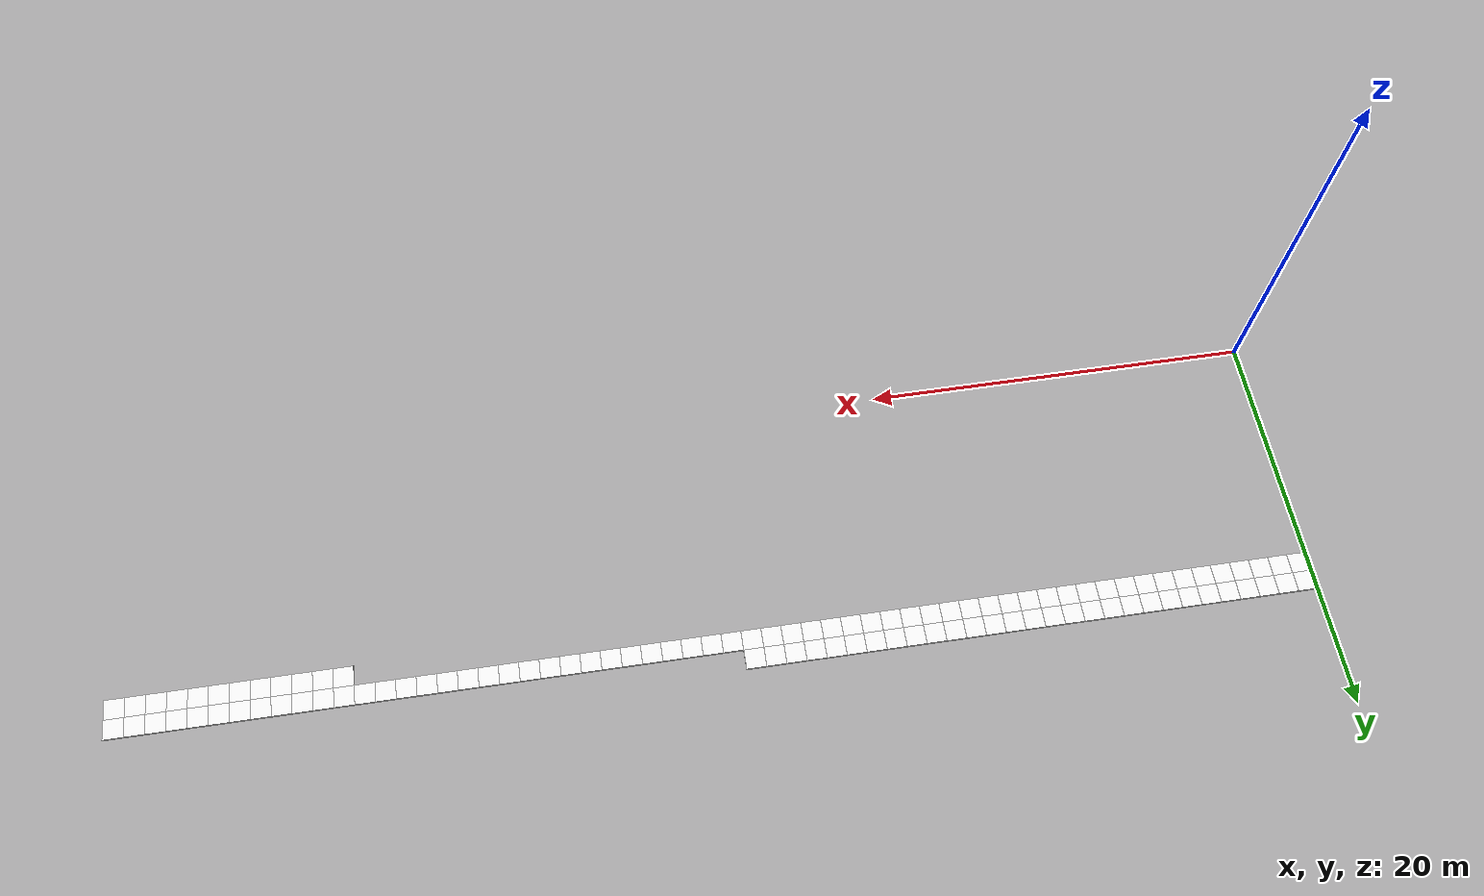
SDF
<sdf version="1.6">
 <world name="grid_world">
  <model name="cell_48_11">
   <static>true</static>
   <link name="link">
    <collision name="collision"><geometry><box><size>1 1 0.1</size></box></geometry></collision>
    <visual name="visual">
     <geometry><box><size>1 1 0.1</size></box></geometry>
     <material>
      <script><uri>file://media/materials/scripts/gazebo.material</uri><name>Gazebo/White</name></script>
     </material>
    </visual>
    <pose>48.5 11.5 0.05 0 0 0</pose>
   </link>
  </model>
  <model name="cell_49_11">
   <static>true</static>
   <link name="link">
    <collision name="collision"><geometry><box><size>1 1 0.1</size></box></geometry></collision>
    <visual name="visual">
     <geometry><box><size>1 1 0.1</size></box></geometry>
     <material>
      <script><uri>file://media/materials/scripts/gazebo.material</uri><name>Gazebo/White</name></script>
     </material>
    </visual>
    <pose>49.5 11.5 0.05 0 0 0</pose>
   </link>
  </model>
  <model name="cell_50_11">
   <static>true</static>
   <link name="link">
    <collision name="collision"><geometry><box><size>1 1 0.1</size></box></geometry></collision>
    <visual name="visual">
     <geometry><box><size>1 1 0.1</size></box></geometry>
     <material>
      <script><uri>file://media/materials/scripts/gazebo.material</uri><name>Gazebo/White</name></script>
     </material>
    </visual>
    <pose>50.5 11.5 0.05 0 0 0</pose>
   </link>
  </model>
  <model name="cell_51_11">
   <static>true</static>
   <link name="link">
    <collision name="collision"><geometry><box><size>1 1 0.1</size></box></geometry></collision>
    <visual name="visual">
     <geometry><box><size>1 1 0.1</size></box></geometry>
     <material>
      <script><uri>file://media/materials/scripts/gazebo.material</uri><name>Gazebo/White</name></script>
     </material>
    </visual>
    <pose>51.5 11.5 0.05 0 0 0</pose>
   </link>
  </model>
  <model name="cell_52_11">
   <static>true</static>
   <link name="link">
    <collision name="collision"><geometry><box><size>1 1 0.1</size></box></geometry></collision>
    <visual name="visual">
     <geometry><box><size>1 1 0.1</size></box></geometry>
     <material>
      <script><uri>file://media/materials/scripts/gazebo.material</uri><name>Gazebo/White</name></script>
     </material>
    </visual>
    <pose>52.5 11.5 0.05 0 0 0</pose>
   </link>
  </model>
  <model name="cell_53_11">
   <static>true</static>
   <link name="link">
    <collision name="collision"><geometry><box><size>1 1 0.1</size></box></geometry></collision>
    <visual name="visual">
     <geometry><box><size>1 1 0.1</size></box></geometry>
     <material>
      <script><uri>file://media/materials/scripts/gazebo.material</uri><name>Gazebo/White</name></script>
     </material>
    </visual>
    <pose>53.5 11.5 0.05 0 0 0</pose>
   </link>
  </model>
  <model name="cell_54_11">
   <static>true</static>
   <link name="link">
    <collision name="collision"><geometry><box><size>1 1 0.1</size></box></geometry></collision>
    <visual name="visual">
     <geometry><box><size>1 1 0.1</size></box></geometry>
     <material>
      <script><uri>file://media/materials/scripts/gazebo.material</uri><name>Gazebo/White</name></script>
     </material>
    </visual>
    <pose>54.5 11.5 0.05 0 0 0</pose>
   </link>
  </model>
  <model name="cell_55_11">
   <static>true</static>
   <link name="link">
    <collision name="collision"><geometry><box><size>1 1 0.1</size></box></geometry></collision>
    <visual name="visual">
     <geometry><box><size>1 1 0.1</size></box></geometry>
     <material>
      <script><uri>file://media/materials/scripts/gazebo.material</uri><name>Gazebo/White</name></script>
     </material>
    </visual>
    <pose>55.5 11.5 0.05 0 0 0</pose>
   </link>
  </model>
  <model name="cell_56_11">
   <static>true</static>
   <link name="link">
    <collision name="collision"><geometry><box><size>1 1 0.1</size></box></geometry></collision>
    <visual name="visual">
     <geometry><box><size>1 1 0.1</size></box></geometry>
     <material>
      <script><uri>file://media/materials/scripts/gazebo.material</uri><name>Gazebo/White</name></script>
     </material>
    </visual>
    <pose>56.5 11.5 0.05 0 0 0</pose>
   </link>
  </model>
  <model name="cell_57_11">
   <static>true</static>
   <link name="link">
    <collision name="collision"><geometry><box><size>1 1 0.1</size></box></geometry></collision>
    <visual name="visual">
     <geometry><box><size>1 1 0.1</size></box></geometry>
     <material>
      <script><uri>file://media/materials/scripts/gazebo.material</uri><name>Gazebo/White</name></script>
     </material>
    </visual>
    <pose>57.5 11.5 0.05 0 0 0</pose>
   </link>
  </model>
  <model name="cell_58_11">
   <static>true</static>
   <link name="link">
    <collision name="collision"><geometry><box><size>1 1 0.1</size></box></geometry></collision>
    <visual name="visual">
     <geometry><box><size>1 1 0.1</size></box></geometry>
     <material>
      <script><uri>file://media/materials/scripts/gazebo.material</uri><name>Gazebo/White</name></script>
     </material>
    </visual>
    <pose>58.5 11.5 0.05 0 0 0</pose>
   </link>
  </model>
  <model name="cell_59_11">
   <static>true</static>
   <link name="link">
    <collision name="collision"><geometry><box><size>1 1 0.1</size></box></geometry></collision>
    <visual name="visual">
     <geometry><box><size>1 1 0.1</size></box></geometry>
     <material>
      <script><uri>file://media/materials/scripts/gazebo.material</uri><name>Gazebo/White</name></script>
     </material>
    </visual>
    <pose>59.5 11.5 0.05 0 0 0</pose>
   </link>
  </model>
  <model name="cell_0_12">
   <static>true</static>
   <link name="link">
    <collision name="collision"><geometry><box><size>1 1 0.1</size></box></geometry></collision>
    <visual name="visual">
     <geometry><box><size>1 1 0.1</size></box></geometry>
     <material>
      <script><uri>file://media/materials/scripts/gazebo.material</uri><name>Gazebo/White</name></script>
     </material>
    </visual>
    <pose>0.5 12.5 0.05 0 0 0</pose>
   </link>
  </model>
  <model name="cell_1_12">
   <static>true</static>
   <link name="link">
    <collision name="collision"><geometry><box><size>1 1 0.1</size></box></geometry></collision>
    <visual name="visual">
     <geometry><box><size>1 1 0.1</size></box></geometry>
     <material>
      <script><uri>file://media/materials/scripts/gazebo.material</uri><name>Gazebo/White</name></script>
     </material>
    </visual>
    <pose>1.5 12.5 0.05 0 0 0</pose>
   </link>
  </model>
  <model name="cell_2_12">
   <static>true</static>
   <link name="link">
    <collision name="collision"><geometry><box><size>1 1 0.1</size></box></geometry></collision>
    <visual name="visual">
     <geometry><box><size>1 1 0.1</size></box></geometry>
     <material>
      <script><uri>file://media/materials/scripts/gazebo.material</uri><name>Gazebo/White</name></script>
     </material>
    </visual>
    <pose>2.5 12.5 0.05 0 0 0</pose>
   </link>
  </model>
  <model name="cell_3_12">
   <static>true</static>
   <link name="link">
    <collision name="collision"><geometry><box><size>1 1 0.1</size></box></geometry></collision>
    <visual name="visual">
     <geometry><box><size>1 1 0.1</size></box></geometry>
     <material>
      <script><uri>file://media/materials/scripts/gazebo.material</uri><name>Gazebo/White</name></script>
     </material>
    </visual>
    <pose>3.5 12.5 0.05 0 0 0</pose>
   </link>
  </model>
  <model name="cell_4_12">
   <static>true</static>
   <link name="link">
    <collision name="collision"><geometry><box><size>1 1 0.1</size></box></geometry></collision>
    <visual name="visual">
     <geometry><box><size>1 1 0.1</size></box></geometry>
     <material>
      <script><uri>file://media/materials/scripts/gazebo.material</uri><name>Gazebo/White</name></script>
     </material>
    </visual>
    <pose>4.5 12.5 0.05 0 0 0</pose>
   </link>
  </model>
  <model name="cell_5_12">
   <static>true</static>
   <link name="link">
    <collision name="collision"><geometry><box><size>1 1 0.1</size></box></geometry></collision>
    <visual name="visual">
     <geometry><box><size>1 1 0.1</size></box></geometry>
     <material>
      <script><uri>file://media/materials/scripts/gazebo.material</uri><name>Gazebo/White</name></script>
     </material>
    </visual>
    <pose>5.5 12.5 0.05 0 0 0</pose>
   </link>
  </model>
  <model name="cell_6_12">
   <static>true</static>
   <link name="link">
    <collision name="collision"><geometry><box><size>1 1 0.1</size></box></geometry></collision>
    <visual name="visual">
     <geometry><box><size>1 1 0.1</size></box></geometry>
     <material>
      <script><uri>file://media/materials/scripts/gazebo.material</uri><name>Gazebo/White</name></script>
     </material>
    </visual>
    <pose>6.5 12.5 0.05 0 0 0</pose>
   </link>
  </model>
  <model name="cell_7_12">
   <static>true</static>
   <link name="link">
    <collision name="collision"><geometry><box><size>1 1 0.1</size></box></geometry></collision>
    <visual name="visual">
     <geometry><box><size>1 1 0.1</size></box></geometry>
     <material>
      <script><uri>file://media/materials/scripts/gazebo.material</uri><name>Gazebo/White</name></script>
     </material>
    </visual>
    <pose>7.5 12.5 0.05 0 0 0</pose>
   </link>
  </model>
  <model name="cell_8_12">
   <static>true</static>
   <link name="link">
    <collision name="collision"><geometry><box><size>1 1 0.1</size></box></geometry></collision>
    <visual name="visual">
     <geometry><box><size>1 1 0.1</size></box></geometry>
     <material>
      <script><uri>file://media/materials/scripts/gazebo.material</uri><name>Gazebo/White</name></script>
     </material>
    </visual>
    <pose>8.5 12.5 0.05 0 0 0</pose>
   </link>
  </model>
  <model name="cell_9_12">
   <static>true</static>
   <link name="link">
    <collision name="collision"><geometry><box><size>1 1 0.1</size></box></geometry></collision>
    <visual name="visual">
     <geometry><box><size>1 1 0.1</size></box></geometry>
     <material>
      <script><uri>file://media/materials/scripts/gazebo.material</uri><name>Gazebo/White</name></script>
     </material>
    </visual>
    <pose>9.5 12.5 0.05 0 0 0</pose>
   </link>
  </model>
  <model name="cell_10_12">
   <static>true</static>
   <link name="link">
    <collision name="collision"><geometry><box><size>1 1 0.1</size></box></geometry></collision>
    <visual name="visual">
     <geometry><box><size>1 1 0.1</size></box></geometry>
     <material>
      <script><uri>file://media/materials/scripts/gazebo.material</uri><name>Gazebo/White</name></script>
     </material>
    </visual>
    <pose>10.5 12.5 0.05 0 0 0</pose>
   </link>
  </model>
  <model name="cell_11_12">
   <static>true</static>
   <link name="link">
    <collision name="collision"><geometry><box><size>1 1 0.1</size></box></geometry></collision>
    <visual name="visual">
     <geometry><box><size>1 1 0.1</size></box></geometry>
     <material>
      <script><uri>file://media/materials/scripts/gazebo.material</uri><name>Gazebo/White</name></script>
     </material>
    </visual>
    <pose>11.5 12.5 0.05 0 0 0</pose>
   </link>
  </model>
  <model name="cell_12_12">
   <static>true</static>
   <link name="link">
    <collision name="collision"><geometry><box><size>1 1 0.1</size></box></geometry></collision>
    <visual name="visual">
     <geometry><box><size>1 1 0.1</size></box></geometry>
     <material>
      <script><uri>file://media/materials/scripts/gazebo.material</uri><name>Gazebo/White</name></script>
     </material>
    </visual>
    <pose>12.5 12.5 0.05 0 0 0</pose>
   </link>
  </model>
  <model name="cell_13_12">
   <static>true</static>
   <link name="link">
    <collision name="collision"><geometry><box><size>1 1 0.1</size></box></geometry></collision>
    <visual name="visual">
     <geometry><box><size>1 1 0.1</size></box></geometry>
     <material>
      <script><uri>file://media/materials/scripts/gazebo.material</uri><name>Gazebo/White</name></script>
     </material>
    </visual>
    <pose>13.5 12.5 0.05 0 0 0</pose>
   </link>
  </model>
  <model name="cell_14_12">
   <static>true</static>
   <link name="link">
    <collision name="collision"><geometry><box><size>1 1 0.1</size></box></geometry></collision>
    <visual name="visual">
     <geometry><box><size>1 1 0.1</size></box></geometry>
     <material>
      <script><uri>file://media/materials/scripts/gazebo.material</uri><name>Gazebo/White</name></script>
     </material>
    </visual>
    <pose>14.5 12.5 0.05 0 0 0</pose>
   </link>
  </model>
  <model name="cell_15_12">
   <static>true</static>
   <link name="link">
    <collision name="collision"><geometry><box><size>1 1 0.1</size></box></geometry></collision>
    <visual name="visual">
     <geometry><box><size>1 1 0.1</size></box></geometry>
     <material>
      <script><uri>file://media/materials/scripts/gazebo.material</uri><name>Gazebo/White</name></script>
     </material>
    </visual>
    <pose>15.5 12.5 0.05 0 0 0</pose>
   </link>
  </model>
  <model name="cell_16_12">
   <static>true</static>
   <link name="link">
    <collision name="collision"><geometry><box><size>1 1 0.1</size></box></geometry></collision>
    <visual name="visual">
     <geometry><box><size>1 1 0.1</size></box></geometry>
     <material>
      <script><uri>file://media/materials/scripts/gazebo.material</uri><name>Gazebo/White</name></script>
     </material>
    </visual>
    <pose>16.5 12.5 0.05 0 0 0</pose>
   </link>
  </model>
  <model name="cell_17_12">
   <static>true</static>
   <link name="link">
    <collision name="collision"><geometry><box><size>1 1 0.1</size></box></geometry></collision>
    <visual name="visual">
     <geometry><box><size>1 1 0.1</size></box></geometry>
     <material>
      <script><uri>file://media/materials/scripts/gazebo.material</uri><name>Gazebo/White</name></script>
     </material>
    </visual>
    <pose>17.5 12.5 0.05 0 0 0</pose>
   </link>
  </model>
  <model name="cell_18_12">
   <static>true</static>
   <link name="link">
    <collision name="collision"><geometry><box><size>1 1 0.1</size></box></geometry></collision>
    <visual name="visual">
     <geometry><box><size>1 1 0.1</size></box></geometry>
     <material>
      <script><uri>file://media/materials/scripts/gazebo.material</uri><name>Gazebo/White</name></script>
     </material>
    </visual>
    <pose>18.5 12.5 0.05 0 0 0</pose>
   </link>
  </model>
  <model name="cell_19_12">
   <static>true</static>
   <link name="link">
    <collision name="collision"><geometry><box><size>1 1 0.1</size></box></geometry></collision>
    <visual name="visual">
     <geometry><box><size>1 1 0.1</size></box></geometry>
     <material>
      <script><uri>file://media/materials/scripts/gazebo.material</uri><name>Gazebo/White</name></script>
     </material>
    </visual>
    <pose>19.5 12.5 0.05 0 0 0</pose>
   </link>
  </model>
  <model name="cell_20_12">
   <static>true</static>
   <link name="link">
    <collision name="collision"><geometry><box><size>1 1 0.1</size></box></geometry></collision>
    <visual name="visual">
     <geometry><box><size>1 1 0.1</size></box></geometry>
     <material>
      <script><uri>file://media/materials/scripts/gazebo.material</uri><name>Gazebo/White</name></script>
     </material>
    </visual>
    <pose>20.5 12.5 0.05 0 0 0</pose>
   </link>
  </model>
  <model name="cell_21_12">
   <static>true</static>
   <link name="link">
    <collision name="collision"><geometry><box><size>1 1 0.1</size></box></geometry></collision>
    <visual name="visual">
     <geometry><box><size>1 1 0.1</size></box></geometry>
     <material>
      <script><uri>file://media/materials/scripts/gazebo.material</uri><name>Gazebo/White</name></script>
     </material>
    </visual>
    <pose>21.5 12.5 0.05 0 0 0</pose>
   </link>
  </model>
  <model name="cell_22_12">
   <static>true</static>
   <link name="link">
    <collision name="collision"><geometry><box><size>1 1 0.1</size></box></geometry></collision>
    <visual name="visual">
     <geometry><box><size>1 1 0.1</size></box></geometry>
     <material>
      <script><uri>file://media/materials/scripts/gazebo.material</uri><name>Gazebo/White</name></script>
     </material>
    </visual>
    <pose>22.5 12.5 0.05 0 0 0</pose>
   </link>
  </model>
  <model name="cell_23_12">
   <static>true</static>
   <link name="link">
    <collision name="collision"><geometry><box><size>1 1 0.1</size></box></geometry></collision>
    <visual name="visual">
     <geometry><box><size>1 1 0.1</size></box></geometry>
     <material>
      <script><uri>file://media/materials/scripts/gazebo.material</uri><name>Gazebo/White</name></script>
     </material>
    </visual>
    <pose>23.5 12.5 0.05 0 0 0</pose>
   </link>
  </model>
  <model name="cell_24_12">
   <static>true</static>
   <link name="link">
    <collision name="collision"><geometry><box><size>1 1 0.1</size></box></geometry></collision>
    <visual name="visual">
     <geometry><box><size>1 1 0.1</size></box></geometry>
     <material>
      <script><uri>file://media/materials/scripts/gazebo.material</uri><name>Gazebo/White</name></script>
     </material>
    </visual>
    <pose>24.5 12.5 0.05 0 0 0</pose>
   </link>
  </model>
  <model name="cell_25_12">
   <static>true</static>
   <link name="link">
    <collision name="collision"><geometry><box><size>1 1 0.1</size></box></geometry></collision>
    <visual name="visual">
     <geometry><box><size>1 1 0.1</size></box></geometry>
     <material>
      <script><uri>file://media/materials/scripts/gazebo.material</uri><name>Gazebo/White</name></script>
     </material>
    </visual>
    <pose>25.5 12.5 0.05 0 0 0</pose>
   </link>
  </model>
  <model name="cell_26_12">
   <static>true</static>
   <link name="link">
    <collision name="collision"><geometry><box><size>1 1 0.1</size></box></geometry></collision>
    <visual name="visual">
     <geometry><box><size>1 1 0.1</size></box></geometry>
     <material>
      <script><uri>file://media/materials/scripts/gazebo.material</uri><name>Gazebo/White</name></script>
     </material>
    </visual>
    <pose>26.5 12.5 0.05 0 0 0</pose>
   </link>
  </model>
  <model name="cell_27_12">
   <static>true</static>
   <link name="link">
    <collision name="collision"><geometry><box><size>1 1 0.1</size></box></geometry></collision>
    <visual name="visual">
     <geometry><box><size>1 1 0.1</size></box></geometry>
     <material>
      <script><uri>file://media/materials/scripts/gazebo.material</uri><name>Gazebo/White</name></script>
     </material>
    </visual>
    <pose>27.5 12.5 0.05 0 0 0</pose>
   </link>
  </model>
  <model name="cell_28_12">
   <static>true</static>
   <link name="link">
    <collision name="collision"><geometry><box><size>1 1 0.1</size></box></geometry></collision>
    <visual name="visual">
     <geometry><box><size>1 1 0.1</size></box></geometry>
     <material>
      <script><uri>file://media/materials/scripts/gazebo.material</uri><name>Gazebo/White</name></script>
     </material>
    </visual>
    <pose>28.5 12.5 0.05 0 0 0</pose>
   </link>
  </model>
  <model name="cell_29_12">
   <static>true</static>
   <link name="link">
    <collision name="collision"><geometry><box><size>1 1 0.1</size></box></geometry></collision>
    <visual name="visual">
     <geometry><box><size>1 1 0.1</size></box></geometry>
     <material>
      <script><uri>file://media/materials/scripts/gazebo.material</uri><name>Gazebo/White</name></script>
     </material>
    </visual>
    <pose>29.5 12.5 0.05 0 0 0</pose>
   </link>
  </model>
  <model name="cell_30_12">
   <static>true</static>
   <link name="link">
    <collision name="collision"><geometry><box><size>1 1 0.1</size></box></geometry></collision>
    <visual name="visual">
     <geometry><box><size>1 1 0.1</size></box></geometry>
     <material>
      <script><uri>file://media/materials/scripts/gazebo.material</uri><name>Gazebo/White</name></script>
     </material>
    </visual>
    <pose>30.5 12.5 0.05 0 0 0</pose>
   </link>
  </model>
  <model name="cell_31_12">
   <static>true</static>
   <link name="link">
    <collision name="collision"><geometry><box><size>1 1 0.1</size></box></geometry></collision>
    <visual name="visual">
     <geometry><box><size>1 1 0.1</size></box></geometry>
     <material>
      <script><uri>file://media/materials/scripts/gazebo.material</uri><name>Gazebo/White</name></script>
     </material>
    </visual>
    <pose>31.5 12.5 0.05 0 0 0</pose>
   </link>
  </model>
  <model name="cell_32_12">
   <static>true</static>
   <link name="link">
    <collision name="collision"><geometry><box><size>1 1 0.1</size></box></geometry></collision>
    <visual name="visual">
     <geometry><box><size>1 1 0.1</size></box></geometry>
     <material>
      <script><uri>file://media/materials/scripts/gazebo.material</uri><name>Gazebo/White</name></script>
     </material>
    </visual>
    <pose>32.5 12.5 0.05 0 0 0</pose>
   </link>
  </model>
  <model name="cell_33_12">
   <static>true</static>
   <link name="link">
    <collision name="collision"><geometry><box><size>1 1 0.1</size></box></geometry></collision>
    <visual name="visual">
     <geometry><box><size>1 1 0.1</size></box></geometry>
     <material>
      <script><uri>file://media/materials/scripts/gazebo.material</uri><name>Gazebo/White</name></script>
     </material>
    </visual>
    <pose>33.5 12.5 0.05 0 0 0</pose>
   </link>
  </model>
  <model name="cell_34_12">
   <static>true</static>
   <link name="link">
    <collision name="collision"><geometry><box><size>1 1 0.1</size></box></geometry></collision>
    <visual name="visual">
     <geometry><box><size>1 1 0.1</size></box></geometry>
     <material>
      <script><uri>file://media/materials/scripts/gazebo.material</uri><name>Gazebo/White</name></script>
     </material>
    </visual>
    <pose>34.5 12.5 0.05 0 0 0</pose>
   </link>
  </model>
  <model name="cell_35_12">
   <static>true</static>
   <link name="link">
    <collision name="collision"><geometry><box><size>1 1 0.1</size></box></geometry></collision>
    <visual name="visual">
     <geometry><box><size>1 1 0.1</size></box></geometry>
     <material>
      <script><uri>file://media/materials/scripts/gazebo.material</uri><name>Gazebo/White</name></script>
     </material>
    </visual>
    <pose>35.5 12.5 0.05 0 0 0</pose>
   </link>
  </model>
  <model name="cell_36_12">
   <static>true</static>
   <link name="link">
    <collision name="collision"><geometry><box><size>1 1 0.1</size></box></geometry></collision>
    <visual name="visual">
     <geometry><box><size>1 1 0.1</size></box></geometry>
     <material>
      <script><uri>file://media/materials/scripts/gazebo.material</uri><name>Gazebo/White</name></script>
     </material>
    </visual>
    <pose>36.5 12.5 0.05 0 0 0</pose>
   </link>
  </model>
  <model name="cell_37_12">
   <static>true</static>
   <link name="link">
    <collision name="collision"><geometry><box><size>1 1 0.1</size></box></geometry></collision>
    <visual name="visual">
     <geometry><box><size>1 1 0.1</size></box></geometry>
     <material>
      <script><uri>file://media/materials/scripts/gazebo.material</uri><name>Gazebo/White</name></script>
     </material>
    </visual>
    <pose>37.5 12.5 0.05 0 0 0</pose>
   </link>
  </model>
  <model name="cell_38_12">
   <static>true</static>
   <link name="link">
    <collision name="collision"><geometry><box><size>1 1 0.1</size></box></geometry></collision>
    <visual name="visual">
     <geometry><box><size>1 1 0.1</size></box></geometry>
     <material>
      <script><uri>file://media/materials/scripts/gazebo.material</uri><name>Gazebo/White</name></script>
     </material>
    </visual>
    <pose>38.5 12.5 0.05 0 0 0</pose>
   </link>
  </model>
  <model name="cell_39_12">
   <static>true</static>
   <link name="link">
    <collision name="collision"><geometry><box><size>1 1 0.1</size></box></geometry></collision>
    <visual name="visual">
     <geometry><box><size>1 1 0.1</size></box></geometry>
     <material>
      <script><uri>file://media/materials/scripts/gazebo.material</uri><name>Gazebo/White</name></script>
     </material>
    </visual>
    <pose>39.5 12.5 0.05 0 0 0</pose>
   </link>
  </model>
  <model name="cell_40_12">
   <static>true</static>
   <link name="link">
    <collision name="collision"><geometry><box><size>1 1 0.1</size></box></geometry></collision>
    <visual name="visual">
     <geometry><box><size>1 1 0.1</size></box></geometry>
     <material>
      <script><uri>file://media/materials/scripts/gazebo.material</uri><name>Gazebo/White</name></script>
     </material>
    </visual>
    <pose>40.5 12.5 0.05 0 0 0</pose>
   </link>
  </model>
  <model name="cell_41_12">
   <static>true</static>
   <link name="link">
    <collision name="collision"><geometry><box><size>1 1 0.1</size></box></geometry></collision>
    <visual name="visual">
     <geometry><box><size>1 1 0.1</size></box></geometry>
     <material>
      <script><uri>file://media/materials/scripts/gazebo.material</uri><name>Gazebo/White</name></script>
     </material>
    </visual>
    <pose>41.5 12.5 0.05 0 0 0</pose>
   </link>
  </model>
  <model name="cell_42_12">
   <static>true</static>
   <link name="link">
    <collision name="collision"><geometry><box><size>1 1 0.1</size></box></geometry></collision>
    <visual name="visual">
     <geometry><box><size>1 1 0.1</size></box></geometry>
     <material>
      <script><uri>file://media/materials/scripts/gazebo.material</uri><name>Gazebo/White</name></script>
     </material>
    </visual>
    <pose>42.5 12.5 0.05 0 0 0</pose>
   </link>
  </model>
  <model name="cell_43_12">
   <static>true</static>
   <link name="link">
    <collision name="collision"><geometry><box><size>1 1 0.1</size></box></geometry></collision>
    <visual name="visual">
     <geometry><box><size>1 1 0.1</size></box></geometry>
     <material>
      <script><uri>file://media/materials/scripts/gazebo.material</uri><name>Gazebo/White</name></script>
     </material>
    </visual>
    <pose>43.5 12.5 0.05 0 0 0</pose>
   </link>
  </model>
  <model name="cell_44_12">
   <static>true</static>
   <link name="link">
    <collision name="collision"><geometry><box><size>1 1 0.1</size></box></geometry></collision>
    <visual name="visual">
     <geometry><box><size>1 1 0.1</size></box></geometry>
     <material>
      <script><uri>file://media/materials/scripts/gazebo.material</uri><name>Gazebo/White</name></script>
     </material>
    </visual>
    <pose>44.5 12.5 0.05 0 0 0</pose>
   </link>
  </model>
  <model name="cell_45_12">
   <static>true</static>
   <link name="link">
    <collision name="collision"><geometry><box><size>1 1 0.1</size></box></geometry></collision>
    <visual name="visual">
     <geometry><box><size>1 1 0.1</size></box></geometry>
     <material>
      <script><uri>file://media/materials/scripts/gazebo.material</uri><name>Gazebo/White</name></script>
     </material>
    </visual>
    <pose>45.5 12.5 0.05 0 0 0</pose>
   </link>
  </model>
  <model name="cell_46_12">
   <static>true</static>
   <link name="link">
    <collision name="collision"><geometry><box><size>1 1 0.1</size></box></geometry></collision>
    <visual name="visual">
     <geometry><box><size>1 1 0.1</size></box></geometry>
     <material>
      <script><uri>file://media/materials/scripts/gazebo.material</uri><name>Gazebo/White</name></script>
     </material>
    </visual>
    <pose>46.5 12.5 0.05 0 0 0</pose>
   </link>
  </model>
  <model name="cell_47_12">
   <static>true</static>
   <link name="link">
    <collision name="collision"><geometry><box><size>1 1 0.1</size></box></geometry></collision>
    <visual name="visual">
     <geometry><box><size>1 1 0.1</size></box></geometry>
     <material>
      <script><uri>file://media/materials/scripts/gazebo.material</uri><name>Gazebo/White</name></script>
     </material>
    </visual>
    <pose>47.5 12.5 0.05 0 0 0</pose>
   </link>
  </model>
  <model name="cell_48_12">
   <static>true</static>
   <link name="link">
    <collision name="collision"><geometry><box><size>1 1 0.1</size></box></geometry></collision>
    <visual name="visual">
     <geometry><box><size>1 1 0.1</size></box></geometry>
     <material>
      <script><uri>file://media/materials/scripts/gazebo.material</uri><name>Gazebo/White</name></script>
     </material>
    </visual>
    <pose>48.5 12.5 0.05 0 0 0</pose>
   </link>
  </model>
  <model name="cell_49_12">
   <static>true</static>
   <link name="link">
    <collision name="collision"><geometry><box><size>1 1 0.1</size></box></geometry></collision>
    <visual name="visual">
     <geometry><box><size>1 1 0.1</size></box></geometry>
     <material>
      <script><uri>file://media/materials/scripts/gazebo.material</uri><name>Gazebo/White</name></script>
     </material>
    </visual>
    <pose>49.5 12.5 0.05 0 0 0</pose>
   </link>
  </model>
  <model name="cell_50_12">
   <static>true</static>
   <link name="link">
    <collision name="collision"><geometry><box><size>1 1 0.1</size></box></geometry></collision>
    <visual name="visual">
     <geometry><box><size>1 1 0.1</size></box></geometry>
     <material>
      <script><uri>file://media/materials/scripts/gazebo.material</uri><name>Gazebo/White</name></script>
     </material>
    </visual>
    <pose>50.5 12.5 0.05 0 0 0</pose>
   </link>
  </model>
  <model name="cell_51_12">
   <static>true</static>
   <link name="link">
    <collision name="collision"><geometry><box><size>1 1 0.1</size></box></geometry></collision>
    <visual name="visual">
     <geometry><box><size>1 1 0.1</size></box></geometry>
     <material>
      <script><uri>file://media/materials/scripts/gazebo.material</uri><name>Gazebo/White</name></script>
     </material>
    </visual>
    <pose>51.5 12.5 0.05 0 0 0</pose>
   </link>
  </model>
  <model name="cell_52_12">
   <static>true</static>
   <link name="link">
    <collision name="collision"><geometry><box><size>1 1 0.1</size></box></geometry></collision>
    <visual name="visual">
     <geometry><box><size>1 1 0.1</size></box></geometry>
     <material>
      <script><uri>file://media/materials/scripts/gazebo.material</uri><name>Gazebo/White</name></script>
     </material>
    </visual>
    <pose>52.5 12.5 0.05 0 0 0</pose>
   </link>
  </model>
  <model name="cell_53_12">
   <static>true</static>
   <link name="link">
    <collision name="collision"><geometry><box><size>1 1 0.1</size></box></geometry></collision>
    <visual name="visual">
     <geometry><box><size>1 1 0.1</size></box></geometry>
     <material>
      <script><uri>file://media/materials/scripts/gazebo.material</uri><name>Gazebo/White</name></script>
     </material>
    </visual>
    <pose>53.5 12.5 0.05 0 0 0</pose>
   </link>
  </model>
  <model name="cell_54_12">
   <static>true</static>
   <link name="link">
    <collision name="collision"><geometry><box><size>1 1 0.1</size></box></geometry></collision>
    <visual name="visual">
     <geometry><box><size>1 1 0.1</size></box></geometry>
     <material>
      <script><uri>file://media/materials/scripts/gazebo.material</uri><name>Gazebo/White</name></script>
     </material>
    </visual>
    <pose>54.5 12.5 0.05 0 0 0</pose>
   </link>
  </model>
  <model name="cell_55_12">
   <static>true</static>
   <link name="link">
    <collision name="collision"><geometry><box><size>1 1 0.1</size></box></geometry></collision>
    <visual name="visual">
     <geometry><box><size>1 1 0.1</size></box></geometry>
     <material>
      <script><uri>file://media/materials/scripts/gazebo.material</uri><name>Gazebo/White</name></script>
     </material>
    </visual>
    <pose>55.5 12.5 0.05 0 0 0</pose>
   </link>
  </model>
  <model name="cell_56_12">
   <static>true</static>
   <link name="link">
    <collision name="collision"><geometry><box><size>1 1 0.1</size></box></geometry></collision>
    <visual name="visual">
     <geometry><box><size>1 1 0.1</size></box></geometry>
     <material>
      <script><uri>file://media/materials/scripts/gazebo.material</uri><name>Gazebo/White</name></script>
     </material>
    </visual>
    <pose>56.5 12.5 0.05 0 0 0</pose>
   </link>
  </model>
  <model name="cell_57_12">
   <static>true</static>
   <link name="link">
    <collision name="collision"><geometry><box><size>1 1 0.1</size></box></geometry></collision>
    <visual name="visual">
     <geometry><box><size>1 1 0.1</size></box></geometry>
     <material>
      <script><uri>file://media/materials/scripts/gazebo.material</uri><name>Gazebo/White</name></script>
     </material>
    </visual>
    <pose>57.5 12.5 0.05 0 0 0</pose>
   </link>
  </model>
  <model name="cell_58_12">
   <static>true</static>
   <link name="link">
    <collision name="collision"><geometry><box><size>1 1 0.1</size></box></geometry></collision>
    <visual name="visual">
     <geometry><box><size>1 1 0.1</size></box></geometry>
     <material>
      <script><uri>file://media/materials/scripts/gazebo.material</uri><name>Gazebo/White</name></script>
     </material>
    </visual>
    <pose>58.5 12.5 0.05 0 0 0</pose>
   </link>
  </model>
  <model name="cell_59_12">
   <static>true</static>
   <link name="link">
    <collision name="collision"><geometry><box><size>1 1 0.1</size></box></geometry></collision>
    <visual name="visual">
     <geometry><box><size>1 1 0.1</size></box></geometry>
     <material>
      <script><uri>file://media/materials/scripts/gazebo.material</uri><name>Gazebo/White</name></script>
     </material>
    </visual>
    <pose>59.5 12.5 0.05 0 0 0</pose>
   </link>
  </model>
  <model name="cell_0_13">
   <static>true</static>
   <link name="link">
    <collision name="collision"><geometry><box><size>1 1 0.1</size></box></geometry></collision>
    <visual name="visual">
     <geometry><box><size>1 1 0.1</size></box></geometry>
     <material>
      <script><uri>file://media/materials/scripts/gazebo.material</uri><name>Gazebo/White</name></script>
     </material>
    </visual>
    <pose>0.5 13.5 0.05 0 0 0</pose>
   </link>
  </model>
  <model name="cell_1_13">
   <static>true</static>
   <link name="link">
    <collision name="collision"><geometry><box><size>1 1 0.1</size></box></geometry></collision>
    <visual name="visual">
     <geometry><box><size>1 1 0.1</size></box></geometry>
     <material>
      <script><uri>file://media/materials/scripts/gazebo.material</uri><name>Gazebo/White</name></script>
     </material>
    </visual>
    <pose>1.5 13.5 0.05 0 0 0</pose>
   </link>
  </model>
  <model name="cell_2_13">
   <static>true</static>
   <link name="link">
    <collision name="collision"><geometry><box><size>1 1 0.1</size></box></geometry></collision>
    <visual name="visual">
     <geometry><box><size>1 1 0.1</size></box></geometry>
     <material>
      <script><uri>file://media/materials/scripts/gazebo.material</uri><name>Gazebo/White</name></script>
     </material>
    </visual>
    <pose>2.5 13.5 0.05 0 0 0</pose>
   </link>
  </model>
  <model name="cell_3_13">
   <static>true</static>
   <link name="link">
    <collision name="collision"><geometry><box><size>1 1 0.1</size></box></geometry></collision>
    <visual name="visual">
     <geometry><box><size>1 1 0.1</size></box></geometry>
     <material>
      <script><uri>file://media/materials/scripts/gazebo.material</uri><name>Gazebo/White</name></script>
     </material>
    </visual>
    <pose>3.5 13.5 0.05 0 0 0</pose>
   </link>
  </model>
  <model name="cell_4_13">
   <static>true</static>
   <link name="link">
    <collision name="collision"><geometry><box><size>1 1 0.1</size></box></geometry></collision>
    <visual name="visual">
     <geometry><box><size>1 1 0.1</size></box></geometry>
     <material>
      <script><uri>file://media/materials/scripts/gazebo.material</uri><name>Gazebo/White</name></script>
     </material>
    </visual>
    <pose>4.5 13.5 0.05 0 0 0</pose>
   </link>
  </model>
  <model name="cell_5_13">
   <static>true</static>
   <link name="link">
    <collision name="collision"><geometry><box><size>1 1 0.1</size></box></geometry></collision>
    <visual name="visual">
     <geometry><box><size>1 1 0.1</size></box></geometry>
     <material>
      <script><uri>file://media/materials/scripts/gazebo.material</uri><name>Gazebo/White</name></script>
     </material>
    </visual>
    <pose>5.5 13.5 0.05 0 0 0</pose>
   </link>
  </model>
  <model name="cell_6_13">
   <static>true</static>
   <link name="link">
    <collision name="collision"><geometry><box><size>1 1 0.1</size></box></geometry></collision>
    <visual name="visual">
     <geometry><box><size>1 1 0.1</size></box></geometry>
     <material>
      <script><uri>file://media/materials/scripts/gazebo.material</uri><name>Gazebo/White</name></script>
     </material>
    </visual>
    <pose>6.5 13.5 0.05 0 0 0</pose>
   </link>
  </model>
  <model name="cell_7_13">
   <static>true</static>
   <link name="link">
    <collision name="collision"><geometry><box><size>1 1 0.1</size></box></geometry></collision>
    <visual name="visual">
     <geometry><box><size>1 1 0.1</size></box></geometry>
     <material>
      <script><uri>file://media/materials/scripts/gazebo.material</uri><name>Gazebo/White</name></script>
     </material>
    </visual>
    <pose>7.5 13.5 0.05 0 0 0</pose>
   </link>
  </model>
  <model name="cell_8_13">
   <static>true</static>
   <link name="link">
    <collision name="collision"><geometry><box><size>1 1 0.1</size></box></geometry></collision>
    <visual name="visual">
     <geometry><box><size>1 1 0.1</size></box></geometry>
     <material>
      <script><uri>file://media/materials/scripts/gazebo.material</uri><name>Gazebo/White</name></script>
     </material>
    </visual>
    <pose>8.5 13.5 0.05 0 0 0</pose>
   </link>
  </model>
  <model name="cell_9_13">
   <static>true</static>
   <link name="link">
    <collision name="collision"><geometry><box><size>1 1 0.1</size></box></geometry></collision>
    <visual name="visual">
     <geometry><box><size>1 1 0.1</size></box></geometry>
     <material>
      <script><uri>file://media/materials/scripts/gazebo.material</uri><name>Gazebo/White</name></script>
     </material>
    </visual>
    <pose>9.5 13.5 0.05 0 0 0</pose>
   </link>
  </model>
  <model name="cell_10_13">
   <static>true</static>
   <link name="link">
    <collision name="collision"><geometry><box><size>1 1 0.1</size></box></geometry></collision>
    <visual name="visual">
     <geometry><box><size>1 1 0.1</size></box></geometry>
     <material>
      <script><uri>file://media/materials/scripts/gazebo.material</uri><name>Gazebo/White</name></script>
     </material>
    </visual>
    <pose>10.5 13.5 0.05 0 0 0</pose>
   </link>
  </model>
  <model name="cell_11_13">
   <static>true</static>
   <link name="link">
    <collision name="collision"><geometry><box><size>1 1 0.1</size></box></geometry></collision>
    <visual name="visual">
     <geometry><box><size>1 1 0.1</size></box></geometry>
     <material>
      <script><uri>file://media/materials/scripts/gazebo.material</uri><name>Gazebo/White</name></script>
     </material>
    </visual>
    <pose>11.5 13.5 0.05 0 0 0</pose>
   </link>
  </model>
  <model name="cell_12_13">
   <static>true</static>
   <link name="link">
    <collision name="collision"><geometry><box><size>1 1 0.1</size></box></geometry></collision>
    <visual name="visual">
     <geometry><box><size>1 1 0.1</size></box></geometry>
     <material>
      <script><uri>file://media/materials/scripts/gazebo.material</uri><name>Gazebo/White</name></script>
     </material>
    </visual>
    <pose>12.5 13.5 0.05 0 0 0</pose>
   </link>
  </model>
  <model name="cell_13_13">
   <static>true</static>
   <link name="link">
    <collision name="collision"><geometry><box><size>1 1 0.1</size></box></geometry></collision>
    <visual name="visual">
     <geometry><box><size>1 1 0.1</size></box></geometry>
     <material>
      <script><uri>file://media/materials/scripts/gazebo.material</uri><name>Gazebo/White</name></script>
     </material>
    </visual>
    <pose>13.5 13.5 0.05 0 0 0</pose>
   </link>
  </model>
  <model name="cell_14_13">
   <static>true</static>
   <link name="link">
    <collision name="collision"><geometry><box><size>1 1 0.1</size></box></geometry></collision>
    <visual name="visual">
     <geometry><box><size>1 1 0.1</size></box></geometry>
     <material>
      <script><uri>file://media/materials/scripts/gazebo.material</uri><name>Gazebo/White</name></script>
     </material>
    </visual>
    <pose>14.5 13.5 0.05 0 0 0</pose>
   </link>
  </model>
  <model name="cell_15_13">
   <static>true</static>
   <link name="link">
    <collision name="collision"><geometry><box><size>1 1 0.1</size></box></geometry></collision>
    <visual name="visual">
     <geometry><box><size>1 1 0.1</size></box></geometry>
     <material>
      <script><uri>file://media/materials/scripts/gazebo.material</uri><name>Gazebo/White</name></script>
     </material>
    </visual>
    <pose>15.5 13.5 0.05 0 0 0</pose>
   </link>
  </model>
  <model name="cell_16_13">
   <static>true</static>
   <link name="link">
    <collision name="collision"><geometry><box><size>1 1 0.1</size></box></geometry></collision>
    <visual name="visual">
     <geometry><box><size>1 1 0.1</size></box></geometry>
     <material>
      <script><uri>file://media/materials/scripts/gazebo.material</uri><name>Gazebo/White</name></script>
     </material>
    </visual>
    <pose>16.5 13.5 0.05 0 0 0</pose>
   </link>
  </model>
  <model name="cell_17_13">
   <static>true</static>
   <link name="link">
    <collision name="collision"><geometry><box><size>1 1 0.1</size></box></geometry></collision>
    <visual name="visual">
     <geometry><box><size>1 1 0.1</size></box></geometry>
     <material>
      <script><uri>file://media/materials/scripts/gazebo.material</uri><name>Gazebo/White</name></script>
     </material>
    </visual>
    <pose>17.5 13.5 0.05 0 0 0</pose>
   </link>
  </model>
  <model name="cell_18_13">
   <static>true</static>
   <link name="link">
    <collision name="collision"><geometry><box><size>1 1 0.1</size></box></geometry></collision>
    <visual name="visual">
     <geometry><box><size>1 1 0.1</size></box></geometry>
     <material>
      <script><uri>file://media/materials/scripts/gazebo.material</uri><name>Gazebo/White</name></script>
     </material>
    </visual>
    <pose>18.5 13.5 0.05 0 0 0</pose>
   </link>
  </model>
  <model name="cell_19_13">
   <static>true</static>
   <link name="link">
    <collision name="collision"><geometry><box><size>1 1 0.1</size></box></geometry></collision>
    <visual name="visual">
     <geometry><box><size>1 1 0.1</size></box></geometry>
     <material>
      <script><uri>file://media/materials/scripts/gazebo.material</uri><name>Gazebo/White</name></script>
     </material>
    </visual>
    <pose>19.5 13.5 0.05 0 0 0</pose>
   </link>
  </model>
  <model name="cell_20_13">
   <static>true</static>
   <link name="link">
    <collision name="collision"><geometry><box><size>1 1 0.1</size></box></geometry></collision>
    <visual name="visual">
     <geometry><box><size>1 1 0.1</size></box></geometry>
     <material>
      <script><uri>file://media/materials/scripts/gazebo.material</uri><name>Gazebo/White</name></script>
     </material>
    </visual>
    <pose>20.5 13.5 0.05 0 0 0</pose>
   </link>
  </model>
  <model name="cell_21_13">
   <static>true</static>
   <link name="link">
    <collision name="collision"><geometry><box><size>1 1 0.1</size></box></geometry></collision>
    <visual name="visual">
     <geometry><box><size>1 1 0.1</size></box></geometry>
     <material>
      <script><uri>file://media/materials/scripts/gazebo.material</uri><name>Gazebo/White</name></script>
     </material>
    </visual>
    <pose>21.5 13.5 0.05 0 0 0</pose>
   </link>
  </model>
  <model name="cell_22_13">
   <static>true</static>
   <link name="link">
    <collision name="collision"><geometry><box><size>1 1 0.1</size></box></geometry></collision>
    <visual name="visual">
     <geometry><box><size>1 1 0.1</size></box></geometry>
     <material>
      <script><uri>file://media/materials/scripts/gazebo.material</uri><name>Gazebo/White</name></script>
     </material>
    </visual>
    <pose>22.5 13.5 0.05 0 0 0</pose>
   </link>
  </model>
  <model name="cell_23_13">
   <static>true</static>
   <link name="link">
    <collision name="collision"><geometry><box><size>1 1 0.1</size></box></geometry></collision>
    <visual name="visual">
     <geometry><box><size>1 1 0.1</size></box></geometry>
     <material>
      <script><uri>file://media/materials/scripts/gazebo.material</uri><name>Gazebo/White</name></script>
     </material>
    </visual>
    <pose>23.5 13.5 0.05 0 0 0</pose>
   </link>
  </model>
  <model name="cell_24_13">
   <static>true</static>
   <link name="link">
    <collision name="collision"><geometry><box><size>1 1 0.1</size></box></geometry></collision>
    <visual name="visual">
     <geometry><box><size>1 1 0.1</size></box></geometry>
     <material>
      <script><uri>file://media/materials/scripts/gazebo.material</uri><name>Gazebo/White</name></script>
     </material>
    </visual>
    <pose>24.5 13.5 0.05 0 0 0</pose>
   </link>
  </model>
  <model name="cell_25_13">
   <static>true</static>
   <link name="link">
    <collision name="collision"><geometry><box><size>1 1 0.1</size></box></geometry></collision>
    <visual name="visual">
     <geometry><box><size>1 1 0.1</size></box></geometry>
     <material>
      <script><uri>file://media/materials/scripts/gazebo.material</uri><name>Gazebo/White</name></script>
     </material>
    </visual>
    <pose>25.5 13.5 0.05 0 0 0</pose>
   </link>
  </model>
  <model name="cell_26_13">
   <static>true</static>
   <link name="link">
    <collision name="collision"><geometry><box><size>1 1 0.1</size></box></geometry></collision>
    <visual name="visual">
     <geometry><box><size>1 1 0.1</size></box></geometry>
     <material>
      <script><uri>file://media/materials/scripts/gazebo.material</uri><name>Gazebo/White</name></script>
     </material>
    </visual>
    <pose>26.5 13.5 0.05 0 0 0</pose>
   </link>
  </model>
  <model name="cell_27_13">
   <static>true</static>
   <link name="link">
    <collision name="collision"><geometry><box><size>1 1 0.1</size></box></geometry></collision>
    <visual name="visual">
     <geometry><box><size>1 1 0.1</size></box></geometry>
     <material>
      <script><uri>file://media/materials/scripts/gazebo.material</uri><name>Gazebo/White</name></script>
     </material>
    </visual>
    <pose>27.5 13.5 0.05 0 0 0</pose>
   </link>
  </model>
  <model name="cell_28_13">
   <static>true</static>
   <link name="link">
    <collision name="collision"><geometry><box><size>1 1 0.1</size></box></geometry></collision>
    <visual name="visual">
     <geometry><box><size>1 1 0.1</size></box></geometry>
     <material>
      <script><uri>file://media/materials/scripts/gazebo.material</uri><name>Gazebo/White</name></script>
     </material>
    </visual>
    <pose>28.5 13.5 0.05 0 0 0</pose>
   </link>
  </model>
 </world>
</sdf>
